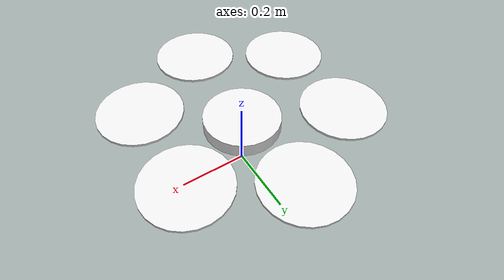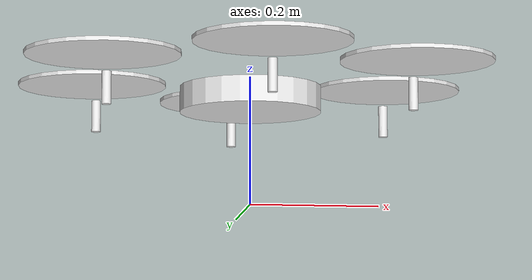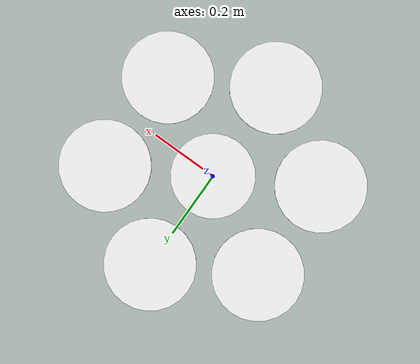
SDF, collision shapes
<?xml version='1.0'?>
<sdf version='1.7'>
  <model name='iris'> <!-- fichier .sdf qui défini la géométrie -->
    <pose>0 0 0.194923 0 0 0</pose>
    <link name='base_link'>
      <velocity_decay>
        <linear>0.0</linear>
        <angular>0.0</angular>
      </velocity_decay>
      <inertial>  <!-- inertie du corps du drone -->
        <pose>0 0 0 0 0 0</pose>
        <mass>2.3</mass>
        <inertia>
           <ixx>0.0364167</ixx>
          <ixy>0</ixy>
          <ixz>0</ixz>
          <iyy>0.0364167</iyy>
          <iyz>0</iyz>
          <izz>0.071875</izz>
        </inertia>
      </inertial>
      <collision name='base_link_collision'> <!-- zone de collision du corps du drone -->
        <pose>0 0 -0.031 0 0 0</pose>
        <geometry>
          <cylinder>
            <length>0.04</length>
            <radius>0.11</radius>
          </cylinder>
        </geometry>
        <surface>
          <contact>
            <ode>
              <max_vel>100.0</max_vel>
              <min_depth>0.001</min_depth>
            </ode>
          </contact>
          <friction>
            <ode>
              <mu>100000.0</mu>
              <mu2>100000.0</mu2>
            </ode>
          </friction>
        </surface>
      </collision>

      <!-- zones de collision des pattes du drone -->
      <collision name='base_link_fixed_joint_lump__front_right_leg_clip_link_collision_1'>
        <pose>0.231922 -0.1339 -0.04 0 -0 2.61799</pose>
        <geometry>
          <cylinder>
            <length>0.05</length>
            <radius>0.0072</radius>
          </cylinder>
        </geometry>
        <surface>
          <contact>
            <ode>
              <min_depth>0.001</min_depth>
              <max_vel>0</max_vel>
            </ode>
          </contact>
          <friction>
            <ode/>
          </friction>
        </surface>
      </collision>
      <collision name='base_link_fixed_joint_lump__middle_left_leg_clip_link_collision_2'>
        <pose>0 0.2678 -0.04 0 0 -1.5708</pose>
        <geometry>
          <cylinder>
            <length>0.05</length>
            <radius>0.0072</radius>
          </cylinder>
        </geometry>
        <surface>
          <contact>
            <ode>
              <min_depth>0.001</min_depth>
              <max_vel>0</max_vel>
            </ode>
          </contact>
          <friction>
            <ode/>
          </friction>
        </surface>
      </collision>
      <collision name='base_link_fixed_joint_lump__rear_right_leg_clip_link_collision_3'>
        <pose>-0.231922 -0.1339 -0.04 0 -0 0.523599</pose>
        <geometry>
          <cylinder>
            <length>0.05</length>
            <radius>0.0072</radius>
          </cylinder>
        </geometry>
        <surface>
          <contact>
            <ode>
              <min_depth>0.001</min_depth>
              <max_vel>0</max_vel>
            </ode>
          </contact>
          <friction>
            <ode/>
          </friction>
        </surface>
      </collision>
      <collision name='base_link_fixed_joint_lump__front_right_leg_clip_link_collision_4'>
        <pose>0.231922 0.1339 -0.04 0 -0 2.61799</pose>
        <geometry>
          <cylinder>
            <length>0.05</length>
            <radius>0.0072</radius>
          </cylinder>
        </geometry>
        <surface>
          <contact>
            <ode>
              <min_depth>0.001</min_depth>
              <max_vel>0</max_vel>
            </ode>
          </contact>
          <friction>
            <ode/>
          </friction>
        </surface>
      </collision>
      <collision name='base_link_fixed_joint_lump__middle_left_leg_clip_link_collision_5'>
        <pose>0 -0.2678 -0.04 0 0 -1.5708</pose>
        <geometry>
          <cylinder>
            <length>0.05</length>
            <radius>0.0072</radius>
          </cylinder>
        </geometry>
        <surface>
          <contact>
            <ode>
              <min_depth>0.001</min_depth>
              <max_vel>0</max_vel>
            </ode>
          </contact>
          <friction>
            <ode/>
          </friction>
        </surface>
      </collision>
      <collision name='base_link_fixed_joint_lump__rear_right_leg_clip_link_collision_6'>
        <pose>-0.231922 0.1339 -0.04 0 -0 0.523599</pose>
        <geometry>
          <cylinder>
            <length>0.05</length>
            <radius>0.0072</radius>
          </cylinder>
        </geometry>
        <surface>
          <contact>
            <ode>
              <min_depth>0.001</min_depth>
              <max_vel>0</max_vel>
            </ode>
          </contact>
          <friction>
            <ode/>
          </friction>
        </surface>
      </collision>

      <!-- visuels du corps du drone, définis par des fichiers .dae -->
      <visual name='base_link_fixed_joint_lump__back_left_arm_link_visual_1'>
        <pose>-0.095263 0.055 -0.012 0 -0 2.61799</pose>
        <geometry>
          <mesh>
            <scale>1 1 1</scale>
            <uri>/home/simon/catkin_ws/src/drone/drone_gazebo/models/iris_with_standoffs/meshes/dji_f550_arm.dae</uri>
          </mesh>
        </geometry>
        <material>
          <script>
            <name>Gazebo/White</name>
            <uri>file://media/materials/scripts/gazebo.material</uri>
          </script>
        </material>
      </visual>
      <visual name='base_link_fixed_joint_lump__back_right_arm_link_visual_2'>
        <pose>-0.095263 -0.055 -0.012 0 0 -2.61799</pose>
        <geometry>
          <mesh>
            <scale>1 1 1</scale>
            <uri>/home/simon/catkin_ws/src/drone/drone_gazebo/models/iris_with_standoffs/meshes/dji_f550_arm.dae</uri>
          </mesh>
        </geometry>
        <material>
          <script>
            <name>Gazebo/White</name>
            <uri>file://media/materials/scripts/gazebo.material</uri>
          </script>
        </material>
      </visual>
      <visual name='base_link_fixed_joint_lump__front_left_arm_link_visual_5'>
        <pose>0.095263 0.055 -0.012 0 -0 0.523599</pose>
        <geometry>
          <mesh>
            <scale>1 1 1</scale>
            <uri>/home/simon/catkin_ws/src/drone/drone_gazebo/models/iris_with_standoffs/meshes/dji_f550_arm.dae</uri>
          </mesh>
        </geometry>
        <material>
          <script>
            <name>Gazebo/White</name>
            <uri>file://media/materials/scripts/gazebo.material</uri>
          </script>
        </material>
      </visual>
      <visual name='base_link_fixed_joint_lump__front_left_rotor_link_visual_6'>
        <pose>0.238157 0.1375 -0.012 0 -0 0</pose>
        <geometry>
          <mesh>
            <scale>1 1 1</scale>
            <uri>/home/simon/catkin_ws/src/drone/drone_gazebo/models/iris_with_standoffs/meshes/dji_f550_rotor.dae</uri>
          </mesh>
        </geometry>
        <material>
          <script>
            <name>Gazebo/Black</name>
            <uri>file://media/materials/scripts/gazebo.material</uri>
          </script>
        </material>
      </visual>
      <visual name='base_link_fixed_joint_lump__front_right_arm_link_visual_7'>
        <pose>0.095263 -0.055 -0.012 0 0 -0.523599</pose>
        <geometry>
          <mesh>
            <scale>1 1 1</scale>
            <uri>/home/simon/catkin_ws/src/drone/drone_gazebo/models/iris_with_standoffs/meshes/dji_f550_arm.dae</uri>
          </mesh>
        </geometry>
        <material>
          <script>
            <name>Gazebo/White</name>
            <uri>file://media/materials/scripts/gazebo.material</uri>
          </script>
        </material>
      </visual>
      <visual name='base_link_fixed_joint_lump__front_right_rotor_link_visual_9'>
        <pose>0.238157 -0.1375 -0.012 0 -0 0</pose>
        <geometry>
          <mesh>
            <scale>1 1 1</scale>
            <uri>/home/simon/catkin_ws/src/drone/drone_gazebo/models/iris_with_standoffs/meshes/dji_f550_rotor.dae</uri>
          </mesh>
        </geometry>
        <material>
          <script>
            <name>Gazebo/Black</name>
            <uri>file://media/materials/scripts/gazebo.material</uri>
          </script>
        </material>
      </visual>
      <visual name='base_link_fixed_joint_lump__lower_central_board_link_visual_10'>
        <pose>0 0 -0.05 0 -0 0.523599</pose>
        <geometry>
          <mesh>
            <scale>1 1 1</scale>
            <uri>/home/simon/catkin_ws/src/drone/drone_gazebo/models/iris_with_standoffs/meshes/dji_f550_central_board.dae</uri>
          </mesh>
        </geometry>
        <material>
          <script>
            <name>Gazebo/DarkGrey</name>
            <uri>file://media/materials/scripts/gazebo.material</uri>
          </script>
        </material>
      </visual>
      <visual name='base_link_fixed_joint_lump__middle_left_arm_link_visual_11'>
        <pose>0 0.11 -0.012 0 -0 1.5708</pose>
        <geometry>
          <mesh>
            <scale>1 1 1</scale>
            <uri>/home/simon/catkin_ws/src/drone/drone_gazebo/models/iris_with_standoffs/meshes/dji_f550_arm.dae</uri>
          </mesh>
        </geometry>
        <material>
          <script>
            <name>Gazebo/Red</name>
            <uri>file://media/materials/scripts/gazebo.material</uri>
          </script>
        </material>
      </visual>
      <visual name='base_link_fixed_joint_lump__middle_left_rotor_link_visual_13'>
        <pose>0 0.275 -0.012 0 -0 0</pose>
        <geometry>
          <mesh>
            <scale>1 1 1</scale>
            <uri>/home/simon/catkin_ws/src/drone/drone_gazebo/models/iris_with_standoffs/meshes/dji_f550_rotor.dae</uri>
          </mesh>
        </geometry>
        <material>
          <script>
            <name>Gazebo/Black</name>
            <uri>file://media/materials/scripts/gazebo.material</uri>
          </script>
        </material>
      </visual>
      <visual name='base_link_fixed_joint_lump__middle_right_arm_link_visual_14'>
        <pose>0 -0.11 -0.012 0 0 -1.5708</pose>
        <geometry>
          <mesh>
            <scale>1 1 1</scale>
            <uri>/home/simon/catkin_ws/src/drone/drone_gazebo/models/iris_with_standoffs/meshes/dji_f550_arm.dae</uri>
          </mesh>
        </geometry>
        <material>
          <script>
            <name>Gazebo/Green</name>
            <uri>file://media/materials/scripts/gazebo.material</uri>
          </script>
        </material>
      </visual>
      <visual name='base_link_fixed_joint_lump__middle_right_rotor_link_visual_15'>
        <pose>0 -0.275 -0.012 0 -0 0</pose>
        <geometry>
          <mesh>
            <scale>1 1 1</scale>
            <uri>/home/simon/catkin_ws/src/drone/drone_gazebo/models/iris_with_standoffs/meshes/dji_f550_rotor.dae</uri>
          </mesh>
        </geometry>
        <material>
          <script>
            <name>Gazebo/Black</name>
            <uri>file://media/materials/scripts/gazebo.material</uri>
          </script>
        </material>
      </visual>
      <visual name='base_link_fixed_joint_lump__pixhawk_link_visual_16'>
        <pose>0 0 -0.0425 0 -0 0</pose>
        <geometry>
          <mesh>
            <scale>1 1 1</scale>
            <uri>/home/simon/catkin_ws/src/drone/drone_gazebo/models/mrs_robots_description/meshes/sensors/pixhawk.dae</uri>
          </mesh>
        </geometry>
        <material>
          <script>
            <name>Gazebo/DarkGrey</name>
            <uri>file://media/materials/scripts/gazebo.material</uri>
          </script>
        </material>
      </visual>
      <visual name='base_link_fixed_joint_lump__rear_left_rotor_link_visual_17'>
        <pose>-0.238157 0.1375 -0.012 0 -0 0</pose>
        <geometry>
          <mesh>
            <scale>1 1 1</scale>
            <uri>/home/simon/catkin_ws/src/drone/drone_gazebo/models/iris_with_standoffs/meshes/dji_f550_rotor.dae</uri>
          </mesh>
        </geometry>
        <material>
          <script>
            <name>Gazebo/Black</name>
            <uri>file://media/materials/scripts/gazebo.material</uri>
          </script>
        </material>
      </visual>
      <visual name='base_link_fixed_joint_lump__rear_right_rotor_link_visual_19'>
        <pose>-0.238157 -0.1375 -0.012 0 -0 0</pose>
        <geometry>
          <mesh>
            <scale>1 1 1</scale>
            <uri>/home/simon/catkin_ws/src/drone/drone_gazebo/models/iris_with_standoffs/meshes/dji_f550_rotor.dae</uri>
          </mesh>
        </geometry>
        <material>
          <script>
            <name>Gazebo/Black</name>
            <uri>file://media/materials/scripts/gazebo.material</uri>
          </script>
        </material>
      </visual>
      <visual name='base_link_fixed_joint_lump__upper_central_board_link_visual_20'>
        <pose>0 0 -0.012 0 -0 0.523599</pose>
        <geometry>
          <mesh>
            <scale>1 1 1</scale>
            <uri>/home/simon/catkin_ws/src/drone/drone_gazebo/models/iris_with_standoffs/meshes/dji_f550_central_board.dae</uri>
          </mesh>
        </geometry>
        <material>
          <script>
            <name>Gazebo/DarkGrey</name>
            <uri>file://media/materials/scripts/gazebo.material</uri>
          </script>
        </material>
      </visual>
     </link>

    <!-- capteurs -->

    <!-- odométrie -->
    <link name='iris/ground_truth/odometry_sensorgt_link'>
      <pose>0 0 0 0 -0 0</pose>
      <inertial>
        <pose>0 0 0 0 -0 0</pose>
        <mass>0.15</mass>
        <inertia>
          <ixx>0.0001</ixx>
          <ixy>0</ixy>
          <ixz>0</ixz>
          <iyy>0.0002</iyy>
          <iyz>0</iyz>
          <izz>0.0002</izz>
        </inertia>
      </inertial>
    </link>
    <joint name='iris/ground_truth/odometry_sensorgt_joint' type='revolute'>
      <child>iris/ground_truth/odometry_sensorgt_link</child>
      <parent>base_link</parent>
      <axis>
        <xyz>0 0 1</xyz>
        <limit>
          <lower>0</lower>
          <upper>0</upper>
          <effort>0</effort>
          <velocity>0</velocity>
        </limit>
        <dynamics>
          <damping>1.0</damping>
        </dynamics>
        <use_parent_model_frame>1</use_parent_model_frame>
      </axis>
      <physics>
        <ode>
          <implicit_spring_damper>1</implicit_spring_damper>
        </ode>
      </physics>
    </joint>

    <!-- imu -->
    <link name='iris/imu_link'>
      <inertial>
        <pose>0 0 0 0 0 0</pose>
        <mass>0.15</mass>
        <inertia>
          <ixx>0.00001</ixx>
          <ixy>0</ixy>
          <ixz>0</ixz>
          <iyy>0.00002</iyy>
          <iyz>0</iyz>
          <izz>0.00002</izz>
        </inertia>
      </inertial>
      <sensor name="imu_sensor" type="imu">
        <pose>0 0 0 3.141593 0 0</pose>
        <always_on>1</always_on>
        <update_rate>1000.0</update_rate>
      </sensor>
    </link>
    <joint name='iris/imu_joint' type='revolute'>
      <child>iris/imu_link</child>
      <parent>base_link</parent>
      <axis>
        <xyz>0 0 1</xyz>
        <limit>
          <lower>0</lower>
          <upper>0</upper>
          <effort>0</effort>
          <velocity>0</velocity>
        </limit>
        <dynamics>
          <damping>1.0</damping>
        </dynamics>
        <use_parent_model_frame>1</use_parent_model_frame>
      </axis>
      <physics>
        <ode>
          <implicit_spring_damper>1</implicit_spring_damper>
        </ode>
      </physics>
    </joint>
    <link name="cam_link">
      <pose>0 0 -0.054 0 0 0 </pose>
      <inertial>
        <mass>0.01</mass>
        <inertia>
          <ixx>0.001</ixx>
          <iyy>0.001</iyy>
          <izz>0.001</izz>
        </inertia>
      </inertial>
      <visual name='cam_link'>
    	  <pose>0 0 0 0 0 0</pose>
    	  <geometry>
    	  	<box>
          <size>0.02 0.01 0.005</size>
    	  	</box>
    	  </geometry>
      </visual>

      <sensor name="camera1" type="depth">
        <pose>0 0 0 0 1.57079632679 0</pose>
        <always_on>true</always_on>
        <update_rate>20.0</update_rate>

        <camera>
            <horizontal_fov>1.3962634</horizontal_fov>
            <image>
                <width>800</width>
                <height>800</height>
                <format>R8G8B8</format>
            </image>
            <clip>
                <near>0.02</near>
                <far>300</far>
            </clip>
            <noise>
                <type>gaussian</type>
                <mean>0.0</mean>
                <stddev>0.0</stddev>
            </noise>
        </camera>

        <plugin name="kinect_plugin" filename="libgazebo_ros_openni_kinect.so">
            <baseline>0.1</baseline>
            <alwaysOn>true</alwaysOn>
            <updateRate>0.0</updateRate>
            <cameraName>camera1</cameraName>
            <imageTopicName>image_raw</imageTopicName>
            <cameraInfoTopicName>camera_info</cameraInfoTopicName>
            <depthImageTopicName>image_raw_depth</depthImageTopicName>
            <depthImageInfoTopicName>camera_info</depthImageInfoTopicName>
            <pointCloudTopicName>cloud</pointCloudTopicName>
            <frameName>camera_link</frameName>
            <pointCloudCutoff>0.5</pointCloudCutoff>
            <pointCloudCutoffMax>2.0</pointCloudCutoffMax>
        </plugin>
      </sensor>
    </link>

    <joint name="camera_mount" type="fixed">
      <child>cam_link</child>
      <parent>base_link</parent>
    </joint>

    <!-- définition des rotors : position, inertie, collision, visuel (.dae), liaison -->

    <link name='rotor_0'>
      <pose>0 -0.275 0.0115 0 -0 0</pose>
      <inertial>
        <pose>0 0 0 0 -0 0</pose>
        <mass>0.025</mass>
        <inertia>
          <ixx>9.75e-06</ixx>
          <ixy>0</ixy>
          <ixz>0</ixz>
          <iyy>0.000166704</iyy>
          <iyz>0</iyz>
          <izz>0.000167604</izz>
        </inertia>
      </inertial>
      <collision name='rotor_0_collision'>
        <pose>0 0 0 0 -0 0</pose>
        <geometry>
          <cylinder>
            <length>0.006</length>
            <radius>0.118</radius>
          </cylinder>
        </geometry>
        <surface>
          <contact>
            <ode/>
          </contact>
          <friction>
            <ode/>
          </friction>
        </surface>
      </collision>
      <visual name='rotor_0_visual'>
        <pose>0 0 0 0 -0 0</pose>
        <geometry>
          <mesh>
            <scale>-1 1 1</scale>
            <uri>model://iris_with_standoffs/meshes/dji_f550_prop.dae</uri>
          </mesh>
        </geometry>
        <material>
          <script>
            <name>Gazebo/White</name>
            <uri>__default__</uri>
          </script>
        </material>
      </visual>
      <gravity>1</gravity>
      <velocity_decay/>
      <self_collide>0</self_collide>
    </link>
    <joint name='rotor_0_joint' type='revolute'>
      <child>rotor_0</child>
      <parent>base_link</parent>
      <axis>
        <xyz>0 0 1</xyz>
        <limit>
          <lower>-1e+16</lower>
          <upper>1e+16</upper>
        </limit>
        <dynamics>
          <damping>0.004</damping>
        </dynamics>
        <use_parent_model_frame>1</use_parent_model_frame>
      </axis>
      <physics>
        <ode>
          <implicit_spring_damper>1</implicit_spring_damper>
        </ode>
      </physics>
    </joint>
    <link name='rotor_1'>
      <pose>0 0.275 0.0115 0 -0 0</pose>
      <inertial>
        <pose>0 0 0 0 -0 0</pose>
        <mass>0.025</mass>
        <inertia>
          <ixx>9.75e-06</ixx>
          <ixy>0</ixy>
          <ixz>0</ixz>
          <iyy>0.000166704</iyy>
          <iyz>0</iyz>
          <izz>0.000167604</izz>
        </inertia>
      </inertial>
      <collision name='rotor_1_collision'>
        <pose>0 0 0 0 -0 0</pose>
        <geometry>
          <cylinder>
            <length>0.006</length>
            <radius>0.118</radius>
          </cylinder>
        </geometry>
        <surface>
          <contact>
            <ode/>
          </contact>
          <friction>
            <ode/>
          </friction>
        </surface>
      </collision>
      <visual name='rotor_1_visual'>
        <pose>0 0 0 0 -0 0</pose>
        <geometry>
          <mesh>
            <scale>1 1 1</scale>
            <uri>model://iris_with_standoffs/meshes/dji_f550_prop.dae</uri>
          </mesh>
        </geometry>
        <material>
          <script>
            <name>Gazebo/White</name>
            <uri>__default__</uri>
          </script>
        </material>
      </visual>
      <gravity>1</gravity>
      <velocity_decay/>
      <self_collide>0</self_collide>
    </link>
    <joint name='rotor_1_joint' type='revolute'>
      <child>rotor_1</child>
      <parent>base_link</parent>
      <axis>
        <xyz>0 0 1</xyz>
        <limit>
          <lower>-1e+16</lower>
          <upper>1e+16</upper>
        </limit>
        <dynamics>
          <damping>0.004</damping>
        </dynamics>
        <use_parent_model_frame>1</use_parent_model_frame>
      </axis>
      <physics>
        <ode>
          <implicit_spring_damper>1</implicit_spring_damper>
        </ode>
      </physics>
    </joint>
    <link name='rotor_2'>
      <pose>0.238157 0.1375 0.0115 0 -0 0</pose>
      <inertial>
        <pose>0 0 0 0 -0 0</pose>
        <mass>0.025</mass>
        <inertia>
          <ixx>9.75e-06</ixx>
          <ixy>0</ixy>
          <ixz>0</ixz>
          <iyy>0.000166704</iyy>
          <iyz>0</iyz>
          <izz>0.000167604</izz>
        </inertia>
      </inertial>
      <collision name='rotor_2_collision'>
        <pose>0 0 0 0 -0 0</pose>
        <geometry>
          <cylinder>
            <length>0.006</length>
            <radius>0.118</radius>
          </cylinder>
        </geometry>
        <surface>
          <contact>
            <ode/>
          </contact>
          <friction>
            <ode/>
          </friction>
        </surface>
      </collision>
      <visual name='rotor_2_visual'>
        <pose>0 0 0 0 -0 0</pose>
        <geometry>
          <mesh>
            <scale>-1 1 1</scale>
            <uri>model://iris_with_standoffs/meshes/dji_f550_prop.dae</uri>
          </mesh>
        </geometry>
        <material>
          <script>
            <name>Gazebo/White</name>
            <uri>__default__</uri>
          </script>
        </material>
      </visual>
      <gravity>1</gravity>
      <velocity_decay/>
      <self_collide>0</self_collide>
    </link>
    <joint name='rotor_2_joint' type='revolute'>
      <child>rotor_2</child>
      <parent>base_link</parent>
      <axis>
        <xyz>0 0 1</xyz>
        <limit>
          <lower>-1e+16</lower>
          <upper>1e+16</upper>
        </limit>
        <dynamics>
          <damping>0.004</damping>
        </dynamics>
        <use_parent_model_frame>1</use_parent_model_frame>
      </axis>
      <physics>
        <ode>
          <implicit_spring_damper>1</implicit_spring_damper>
        </ode>
      </physics>
    </joint>
    <link name='rotor_3'>
      <pose>-0.238157 -0.1375 0.0115 0 -0 0</pose>
      <inertial>
        <pose>0 0 0 0 -0 0</pose>
        <mass>0.025</mass>
        <inertia>
          <ixx>9.75e-06</ixx>
          <ixy>0</ixy>
          <ixz>0</ixz>
          <iyy>0.000166704</iyy>
          <iyz>0</iyz>
          <izz>0.000167604</izz>
        </inertia>
      </inertial>
      <collision name='rotor_3_collision'>
        <pose>0 0 0 0 -0 0</pose>
        <geometry>
          <cylinder>
            <length>0.006</length>
            <radius>0.118</radius>
          </cylinder>
        </geometry>
        <surface>
          <contact>
            <ode/>
          </contact>
          <friction>
            <ode/>
          </friction>
        </surface>
      </collision>
      <visual name='rotor_3_visual'>
        <pose>0 0 0 0 -0 0</pose>
        <geometry>
          <mesh>
            <scale>1 1 1</scale>
            <uri>model://iris_with_standoffs/meshes/dji_f550_prop.dae</uri>
          </mesh>
        </geometry>
        <material>
          <script>
            <name>Gazebo/White</name>
            <uri>__default__</uri>
          </script>
        </material>
      </visual>
      <gravity>1</gravity>
      <velocity_decay/>
      <self_collide>0</self_collide>
    </link>
    <joint name='rotor_3_joint' type='revolute'>
      <child>rotor_3</child>
      <parent>base_link</parent>
      <axis>
        <xyz>0 0 1</xyz>
        <limit>
          <lower>-1e+16</lower>
          <upper>1e+16</upper>
        </limit>
        <dynamics>
          <damping>0.004</damping>
        </dynamics>
        <use_parent_model_frame>1</use_parent_model_frame>
      </axis>
      <physics>
        <ode>
          <implicit_spring_damper>1</implicit_spring_damper>
        </ode>
      </physics>
    </joint>
    <link name='rotor_4'>
      <pose>0.238157 -0.1375 0.0115 0 -0 0</pose>
      <inertial>
        <pose>0 0 0 0 -0 0</pose>
        <mass>0.025</mass>
        <inertia>
          <ixx>9.75e-06</ixx>
          <ixy>0</ixy>
          <ixz>0</ixz>
          <iyy>0.000166704</iyy>
          <iyz>0</iyz>
          <izz>0.000167604</izz>
        </inertia>
      </inertial>
      <collision name='rotor_4_collision'>
        <pose>0 0 0 0 -0 0</pose>
        <geometry>
          <cylinder>
            <length>0.006</length>
            <radius>0.118</radius>
          </cylinder>
        </geometry>
        <surface>
          <contact>
            <ode/>
          </contact>
          <friction>
            <ode/>
          </friction>
        </surface>
      </collision>
      <visual name='rotor_4_visual'>
        <pose>0 0 0 0 -0 0</pose>
        <geometry>
          <mesh>
            <scale>1 1 1</scale>
            <uri>model://iris_with_standoffs/meshes/dji_f550_prop.dae</uri>
          </mesh>
        </geometry>
        <material>
          <script>
            <name>Gazebo/White</name>
            <uri>__default__</uri>
          </script>
        </material>
      </visual>
      <gravity>1</gravity>
      <velocity_decay/>
      <self_collide>0</self_collide>
    </link>
    <joint name='rotor_4_joint' type='revolute'>
      <child>rotor_4</child>
      <parent>base_link</parent>
      <axis>
        <xyz>0 0 1</xyz>
        <limit>
          <lower>-1e+16</lower>
          <upper>1e+16</upper>
        </limit>
        <dynamics>
          <damping>0.004</damping>
        </dynamics>
        <use_parent_model_frame>1</use_parent_model_frame>
      </axis>
      <physics>
        <ode>
          <implicit_spring_damper>1</implicit_spring_damper>
        </ode>
      </physics>
    </joint>
    <link name='rotor_5'>
      <pose>-0.238157 0.1375 0.0115 0 -0 0</pose>
      <inertial>
        <pose>0 0 0 0 -0 0</pose>
        <mass>0.025</mass>
        <inertia>
          <ixx>9.75e-06</ixx>
          <ixy>0</ixy>
          <ixz>0</ixz>
          <iyy>0.000166704</iyy>
          <iyz>0</iyz>
          <izz>0.000167604</izz>
        </inertia>
      </inertial>
      <collision name='rotor_5_collision'>
        <pose>0 0 0 0 -0 0</pose>
        <geometry>
          <cylinder>
            <length>0.006</length>
            <radius>0.118</radius>
          </cylinder>
        </geometry>
        <surface>
          <contact>
            <ode/>
          </contact>
          <friction>
            <ode/>
          </friction>
        </surface>
      </collision>
      <visual name='rotor_5_visual'>
        <pose>0 0 0 0 -0 0</pose>
        <geometry>
          <mesh>
            <scale>-1 1 1</scale>
            <uri>model://iris_with_standoffs/meshes/dji_f550_prop.dae</uri>
          </mesh>
        </geometry>
        <material>
          <script>
            <name>Gazebo/White</name>
            <uri>__default__</uri>
          </script>
        </material>
      </visual>
      <gravity>1</gravity>
      <velocity_decay/>
      <self_collide>0</self_collide>
    </link>
    <joint name='rotor_5_joint' type='revolute'>
      <child>rotor_5</child>
      <parent>base_link</parent>
      <axis>
        <xyz>0 0 1</xyz>
        <limit>
          <lower>-1e+16</lower>
          <upper>1e+16</upper>
        </limit>
        <dynamics>
          <damping>0.004</damping>
        </dynamics>
        <use_parent_model_frame>1</use_parent_model_frame>
      </axis>
      <physics>
        <ode>
          <implicit_spring_damper>1</implicit_spring_damper>
        </ode>
      </physics>
    </joint>
    <static>0</static>
  </model>
</sdf>
